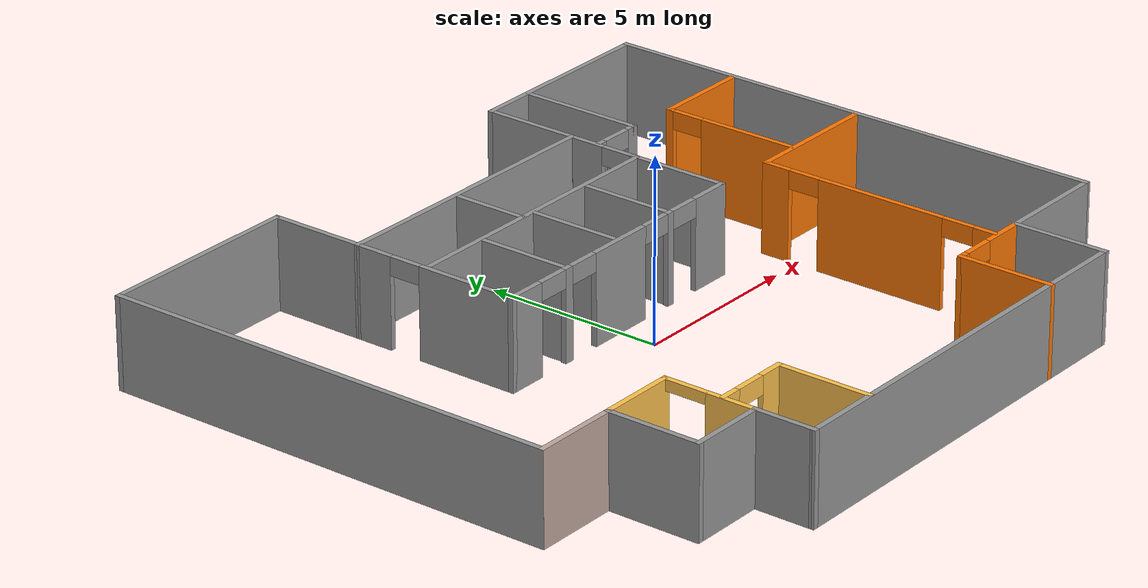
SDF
<?xml version='1.0'?>
<sdf version='1.6'>
  <model name='outerwall'>
    <pose frame=''>0.06164 0.002181 0 0 -0 0</pose>
    <link name='Wall_100'>
      <collision name='Wall_100_Collision'>
        <geometry>
          <box>
            <size>2.55 0.15 2.5</size>
          </box>
        </geometry>
        <pose frame=''>0 0 1.25 0 -0 0</pose>
      </collision>
      <visual name='Wall_100_Visual'>
        <pose frame=''>0 0 1.25 0 -0 0</pose>
        <geometry>
          <box>
            <size>2.55 0.15 2.5</size>
          </box>
        </geometry>
        <material>
          <script>
            <uri>file://media/materials/scripts/gazebo.material</uri>
            <name>Gazebo/Grey</name>
          </script>
          <ambient>1 1 1 1</ambient>
        </material>
        <meta>
          <layer>0</layer>
        </meta>
      </visual>
      <pose frame=''>-0.056011 2.45871 0 0 0 -1.5708</pose>
    </link>
    <link name='Wall_102'>
      <collision name='Wall_102_Collision'>
        <geometry>
          <box>
            <size>2.2 0.15 2.5</size>
          </box>
        </geometry>
        <pose frame=''>0 0 1.25 0 -0 0</pose>
      </collision>
      <visual name='Wall_102_Visual'>
        <pose frame=''>0 0 1.25 0 -0 0</pose>
        <geometry>
          <box>
            <size>2.2 0.15 2.5</size>
          </box>
        </geometry>
        <material>
          <script>
            <uri>file://media/materials/scripts/gazebo.material</uri>
            <name>Gazebo/Grey</name>
          </script>
          <ambient>1 1 1 1</ambient>
        </material>
        <meta>
          <layer>0</layer>
        </meta>
      </visual>
      <pose frame=''>-0.453684 4.80607 0 0 -0 1.5708</pose>
    </link>
    <link name='Wall_105'>
      <collision name='Wall_105_Collision'>
        <geometry>
          <box>
            <size>3.5 0.15 2.5</size>
          </box>
        </geometry>
        <pose frame=''>0 0 1.25 0 -0 0</pose>
      </collision>
      <visual name='Wall_105_Visual'>
        <pose frame=''>0 0 1.25 0 -0 0</pose>
        <geometry>
          <box>
            <size>3.5 0.15 2.5</size>
          </box>
        </geometry>
        <material>
          <script>
            <uri>file://media/materials/scripts/gazebo.material</uri>
            <name>Gazebo/Grey</name>
          </script>
          <ambient>1 1 1 1</ambient>
        </material>
        <meta>
          <layer>0</layer>
        </meta>
      </visual>
      <pose frame=''>5.56389 6.69027 0 0 0 -1.5708</pose>
    </link>
    <link name='Wall_109'>
      <pose frame=''>4.88889 5.01527 0 0 -0 3.14159</pose>
      <visual name='Wall_109_Visual_0'>
        <pose frame=''>-0.57786 0 1.25 0 -0 0</pose>
        <geometry>
          <box>
            <size>0.344281 0.15 2.5</size>
          </box>
        </geometry>
        <material>
          <script>
            <uri>file://media/materials/scripts/gazebo.material</uri>
            <name>Gazebo/Grey</name>
          </script>
          <ambient>1 1 1 1</ambient>
        </material>
        <meta>
          <layer>0</layer>
        </meta>
      </visual>
      <collision name='Wall_109_Collision_0'>
        <geometry>
          <box>
            <size>0.344281 0.15 2.5</size>
          </box>
        </geometry>
        <pose frame=''>-0.57786 0 1.25 0 -0 0</pose>
      </collision>
      <visual name='Wall_109_Visual_1'>
        <pose frame=''>0.62214 0 1.25 0 -0 0</pose>
        <geometry>
          <box>
            <size>0.255719 0.15 2.5</size>
          </box>
        </geometry>
        <material>
          <script>
            <uri>file://media/materials/scripts/gazebo.material</uri>
            <name>Gazebo/Grey</name>
          </script>
          <ambient>1 1 1 1</ambient>
        </material>
        <meta>
          <layer>0</layer>
        </meta>
      </visual>
      <collision name='Wall_109_Collision_1'>
        <geometry>
          <box>
            <size>0.255719 0.15 2.5</size>
          </box>
        </geometry>
        <pose frame=''>0.62214 0 1.25 0 -0 0</pose>
      </collision>
      <visual name='Wall_109_Visual_2'>
        <pose frame=''>0.044281 0 2.25 0 -0 0</pose>
        <geometry>
          <box>
            <size>0.9 0.15 0.5</size>
          </box>
        </geometry>
        <material>
          <script>
            <uri>file://media/materials/scripts/gazebo.material</uri>
            <name>Gazebo/Grey</name>
          </script>
          <ambient>1 1 1 1</ambient>
        </material>
        <meta>
          <layer>0</layer>
        </meta>
      </visual>
      <collision name='Wall_109_Collision_2'>
        <geometry>
          <box>
            <size>0.9 0.15 0.5</size>
          </box>
        </geometry>
        <pose frame=''>0.044281 0 2.25 0 -0 0</pose>
      </collision>
    </link>
    <link name='Wall_11'>
      <collision name='Wall_11_Collision'>
        <geometry>
          <box>
            <size>12 0.15 2.5</size>
          </box>
        </geometry>
        <pose frame=''>0 0 1.25 0 -0 0</pose>
      </collision>
      <visual name='Wall_11_Visual'>
        <pose frame=''>0 0 1.25 0 -0 0</pose>
        <geometry>
          <box>
            <size>12 0.15 2.5</size>
          </box>
        </geometry>
        <material>
          <script>
            <uri>file://media/materials/scripts/gazebo.material</uri>
            <name>Gazebo/Grey</name>
          </script>
          <ambient>1 1 1 1</ambient>
        </material>
        <meta>
          <layer>0</layer>
        </meta>
      </visual>
      <pose frame=''>0.674876 -8.47482 0 0 -0 0</pose>
    </link>
    <link name='Wall_111'>
      <pose frame=''>6.98236 2.98582 0 0 -0 1.5708</pose>
      <visual name='Wall_111_Visual_0'>
        <pose frame=''>-0.560705 0 1.25 0 -0 0</pose>
        <geometry>
          <box>
            <size>2.87859 0.15 2.5</size>
          </box>
        </geometry>
        <material>
          <script>
            <uri>file://media/materials/scripts/gazebo.material</uri>
            <name>Gazebo/Grey</name>
          </script>
          <ambient>0.996078 0.47451 0.0196078 1</ambient>
        </material>
        <meta>
          <layer>0</layer>
        </meta>
      </visual>
      <collision name='Wall_111_Collision_0'>
        <geometry>
          <box>
            <size>2.87859 0.15 2.5</size>
          </box>
        </geometry>
        <pose frame=''>-0.560705 0 1.25 0 -0 0</pose>
      </collision>
      <visual name='Wall_111_Visual_1'>
        <pose frame=''>1.88929 0 1.25 0 -0 0</pose>
        <geometry>
          <box>
            <size>0.22141 0.15 2.5</size>
          </box>
        </geometry>
        <material>
          <script>
            <uri>file://media/materials/scripts/gazebo.material</uri>
            <name>Gazebo/Grey</name>
          </script>
          <ambient>0.996078 0.47451 0.0196078 1</ambient>
        </material>
        <meta>
          <layer>0</layer>
        </meta>
      </visual>
      <collision name='Wall_111_Collision_1'>
        <geometry>
          <box>
            <size>0.22141 0.15 2.5</size>
          </box>
        </geometry>
        <pose frame=''>1.88929 0 1.25 0 -0 0</pose>
      </collision>
      <visual name='Wall_111_Visual_2'>
        <pose frame=''>1.32859 0 2.25 0 -0 0</pose>
        <geometry>
          <box>
            <size>0.9 0.15 0.5</size>
          </box>
        </geometry>
        <material>
          <script>
            <uri>file://media/materials/scripts/gazebo.material</uri>
            <name>Gazebo/Grey</name>
          </script>
          <ambient>0.996078 0.47451 0.0196078 1</ambient>
        </material>
        <meta>
          <layer>0</layer>
        </meta>
      </visual>
      <collision name='Wall_111_Collision_2'>
        <geometry>
          <box>
            <size>0.9 0.15 0.5</size>
          </box>
        </geometry>
        <pose frame=''>1.32859 0 2.25 0 -0 0</pose>
      </collision>
    </link>
    <link name='Wall_113'>
      <collision name='Wall_113_Collision'>
        <geometry>
          <box>
            <size>2.75 0.15 2.5</size>
          </box>
        </geometry>
        <pose frame=''>0 0 1.25 0 -0 0</pose>
      </collision>
      <visual name='Wall_113_Visual'>
        <pose frame=''>0 0 1.25 0 -0 0</pose>
        <geometry>
          <box>
            <size>2.75 0.15 2.5</size>
          </box>
        </geometry>
        <material>
          <script>
            <uri>file://media/materials/scripts/gazebo.material</uri>
            <name>Gazebo/Grey</name>
          </script>
          <ambient>0.996078 0.47451 0.0196078 1</ambient>
        </material>
        <meta>
          <layer>0</layer>
        </meta>
      </visual>
      <pose frame=''>8.28236 4.91082 0 0 -0 0</pose>
    </link>
    <link name='Wall_13'>
      <collision name='Wall_13_Collision'>
        <geometry>
          <box>
            <size>2.7 0.15 2.5</size>
          </box>
        </geometry>
        <pose frame=''>0 0 1.25 0 -0 0</pose>
      </collision>
      <visual name='Wall_13_Visual'>
        <pose frame=''>0 0 1.25 0 -0 0</pose>
        <geometry>
          <box>
            <size>2.7 0.15 2.5</size>
          </box>
        </geometry>
        <material>
          <script>
            <uri>file://media/materials/scripts/gazebo.material</uri>
            <name>Gazebo/Grey</name>
          </script>
          <ambient>1 1 1 1</ambient>
        </material>
        <meta>
          <layer>0</layer>
        </meta>
      </visual>
      <pose frame=''>6.60012 -7.2 0 0 -0 1.57061</pose>
    </link>
    <link name='Wall_15'>
      <collision name='Wall_15_Collision'>
        <geometry>
          <box>
            <size>3.25 0.15 2.5</size>
          </box>
        </geometry>
        <pose frame=''>0 0 1.25 0 -0 0</pose>
      </collision>
      <visual name='Wall_15_Visual'>
        <pose frame=''>0 0 1.25 0 -0 0</pose>
        <geometry>
          <box>
            <size>3.25 0.15 2.5</size>
          </box>
        </geometry>
        <material>
          <script>
            <uri>file://media/materials/scripts/gazebo.material</uri>
            <name>Gazebo/Grey</name>
          </script>
          <ambient>1 1 1 1</ambient>
        </material>
        <meta>
          <layer>0</layer>
        </meta>
      </visual>
      <pose frame=''>8.15012 -5.925 0 0 -0 0.000116</pose>
    </link>
    <link name='Wall_17'>
      <collision name='Wall_17_Collision'>
        <geometry>
          <box>
            <size>14.5 0.15 2.5</size>
          </box>
        </geometry>
        <pose frame=''>0 0 1.25 0 -0 0</pose>
      </collision>
      <visual name='Wall_17_Visual'>
        <pose frame=''>0 0 1.25 0 -0 0</pose>
        <geometry>
          <box>
            <size>14.5 0.15 2.5</size>
          </box>
        </geometry>
        <material>
          <script>
            <uri>file://media/materials/scripts/gazebo.material</uri>
            <name>Gazebo/Grey</name>
          </script>
          <ambient>1 1 1 1</ambient>
        </material>
        <meta>
          <layer>0</layer>
        </meta>
      </visual>
      <pose frame=''>9.69988 1.25018 0 0 -0 1.5708</pose>
    </link>
    <link name='Wall_19'>
      <collision name='Wall_19_Collision'>
        <geometry>
          <box>
            <size>5.75 0.15 2.5</size>
          </box>
        </geometry>
        <pose frame=''>0 0 1.25 0 -0 0</pose>
      </collision>
      <visual name='Wall_19_Visual'>
        <pose frame=''>0 0 1.25 0 -0 0</pose>
        <geometry>
          <box>
            <size>5.75 0.15 2.5</size>
          </box>
        </geometry>
        <material>
          <script>
            <uri>file://media/materials/scripts/gazebo.material</uri>
            <name>Gazebo/Grey</name>
          </script>
          <ambient>1 1 1 1</ambient>
        </material>
        <meta>
          <layer>0</layer>
        </meta>
      </visual>
      <pose frame=''>6.89988 8.42518 0 0 -0 3.14159</pose>
    </link>
    <link name='Wall_21'>
      <collision name='Wall_21_Collision'>
        <geometry>
          <box>
            <size>1.8 0.15 2.5</size>
          </box>
        </geometry>
        <pose frame=''>0 0 1.25 0 -0 0</pose>
      </collision>
      <visual name='Wall_21_Visual'>
        <pose frame=''>0 0 1.25 0 -0 0</pose>
        <geometry>
          <box>
            <size>1.8 0.15 2.5</size>
          </box>
        </geometry>
        <material>
          <script>
            <uri>file://media/materials/scripts/gazebo.material</uri>
            <name>Gazebo/Grey</name>
          </script>
          <ambient>1 1 1 1</ambient>
        </material>
        <meta>
          <layer>0</layer>
        </meta>
      </visual>
      <pose frame=''>-5.24988 -7.65 0 0 -0 1.5705</pose>
    </link>
    <link name='Wall_23'>
      <collision name='Wall_23_Collision'>
        <geometry>
          <box>
            <size>2.25 0.15 2.5</size>
          </box>
        </geometry>
        <pose frame=''>0 0 1.25 0 -0 0</pose>
      </collision>
      <visual name='Wall_23_Visual'>
        <pose frame=''>0 0 1.25 0 -0 0</pose>
        <geometry>
          <box>
            <size>2.25 0.15 2.5</size>
          </box>
        </geometry>
        <material>
          <script>
            <uri>file://media/materials/scripts/gazebo.material</uri>
            <name>Gazebo/Grey</name>
          </script>
          <ambient>1 1 1 1</ambient>
        </material>
        <meta>
          <layer>0</layer>
        </meta>
      </visual>
      <pose frame=''>-6.29988 -6.825 0 0 -0 3.14142</pose>
    </link>
    <link name='Wall_25'>
      <collision name='Wall_25_Collision'>
        <geometry>
          <box>
            <size>2.7 0.15 2.5</size>
          </box>
        </geometry>
        <pose frame=''>0 0 1.25 0 -0 0</pose>
      </collision>
      <visual name='Wall_25_Visual'>
        <pose frame=''>0 0 1.25 0 -0 0</pose>
        <geometry>
          <box>
            <size>2.7 0.15 2.5</size>
          </box>
        </geometry>
        <material>
          <script>
            <uri>file://media/materials/scripts/gazebo.material</uri>
            <name>Gazebo/Grey</name>
          </script>
          <ambient>1 1 1 1</ambient>
        </material>
        <meta>
          <layer>0</layer>
        </meta>
      </visual>
      <pose frame=''>-7.34988 -5.55 0 0 -0 1.57061</pose>
    </link>
    <link name='Wall_27'>
      <collision name='Wall_27_Collision'>
        <geometry>
          <box>
            <size>2.5 0.15 2.5</size>
          </box>
        </geometry>
        <pose frame=''>0 0 1.25 0 -0 0</pose>
      </collision>
      <visual name='Wall_27_Visual'>
        <pose frame=''>0 0 1.25 0 -0 0</pose>
        <geometry>
          <box>
            <size>2.5 0.15 2.5</size>
          </box>
        </geometry>
        <material>
          <script>
            <uri>file://media/materials/scripts/gazebo.material</uri>
            <name>Gazebo/Grey</name>
          </script>
          <ambient>0.760784 0.662745 0.627451 1</ambient>
        </material>
        <meta>
          <layer>0</layer>
        </meta>
      </visual>
      <pose frame=''>-8.52464 -4.27518 0 0 -0 3.14159</pose>
    </link>
    <link name='Wall_29'>
      <collision name='Wall_29_Collision'>
        <geometry>
          <box>
            <size>12.9 0.15 2.5</size>
          </box>
        </geometry>
        <pose frame=''>0 0 1.25 0 -0 0</pose>
      </collision>
      <visual name='Wall_29_Visual'>
        <pose frame=''>0 0 1.25 0 -0 0</pose>
        <geometry>
          <box>
            <size>12.9 0.15 2.5</size>
          </box>
        </geometry>
        <material>
          <script>
            <uri>file://media/materials/scripts/gazebo.material</uri>
            <name>Gazebo/Grey</name>
          </script>
          <ambient>1 1 1 1</ambient>
        </material>
        <meta>
          <layer>0</layer>
        </meta>
      </visual>
      <pose frame=''>-9.69988 2.1 0 0 -0 1.57083</pose>
    </link>
    <link name='Wall_33'>
      <collision name='Wall_33_Collision'>
        <geometry>
          <box>
            <size>5.75 0.15 2.5</size>
          </box>
        </geometry>
        <pose frame=''>0 0 1.25 0 -0 0</pose>
      </collision>
      <visual name='Wall_33_Visual'>
        <pose frame=''>0 0 1.25 0 -0 0</pose>
        <geometry>
          <box>
            <size>5.75 0.15 2.5</size>
          </box>
        </geometry>
        <material>
          <script>
            <uri>file://media/materials/scripts/gazebo.material</uri>
            <name>Gazebo/Grey</name>
          </script>
          <ambient>1 1 1 1</ambient>
        </material>
        <meta>
          <layer>0</layer>
        </meta>
      </visual>
      <pose frame=''>-6.90012 8.47518 0 0 -0 0</pose>
    </link>
    <link name='Wall_35'>
      <collision name='Wall_35_Collision'>
        <geometry>
          <box>
            <size>2.75 0.15 2.5</size>
          </box>
        </geometry>
        <pose frame=''>0 0 1.25 0 -0 0</pose>
      </collision>
      <visual name='Wall_35_Visual'>
        <pose frame=''>0 0 1.25 0 -0 0</pose>
        <geometry>
          <box>
            <size>2.75 0.15 2.5</size>
          </box>
        </geometry>
        <material>
          <script>
            <uri>file://media/materials/scripts/gazebo.material</uri>
            <name>Gazebo/Grey</name>
          </script>
          <ambient>1 1 1 1</ambient>
        </material>
        <meta>
          <layer>0</layer>
        </meta>
      </visual>
      <pose frame=''>-4.10012 7.17518 0 0 0 -1.5708</pose>
    </link>
    <link name='Wall_37'>
      <collision name='Wall_37_Collision'>
        <geometry>
          <box>
            <size>2.75 0.15 2.5</size>
          </box>
        </geometry>
        <pose frame=''>0 0 1.25 0 -0 0</pose>
      </collision>
      <visual name='Wall_37_Visual'>
        <pose frame=''>0 0 1.25 0 -0 0</pose>
        <geometry>
          <box>
            <size>2.75 0.15 2.5</size>
          </box>
        </geometry>
        <material>
          <script>
            <uri>file://media/materials/scripts/gazebo.material</uri>
            <name>Gazebo/Grey</name>
          </script>
          <ambient>1 1 1 1</ambient>
        </material>
        <meta>
          <layer>0</layer>
        </meta>
      </visual>
      <pose frame=''>4.09988 7.12518 0 0 0 -1.5708</pose>
    </link>
    <link name='Wall_39'>
      <collision name='Wall_39_Collision'>
        <geometry>
          <box>
            <size>8.35015 0.15 2.5</size>
          </box>
        </geometry>
        <pose frame=''>0 0 1.25 0 -0 0</pose>
      </collision>
      <visual name='Wall_39_Visual'>
        <pose frame=''>0 0 1.25 0 -0 0</pose>
        <geometry>
          <box>
            <size>8.35015 0.15 2.5</size>
          </box>
        </geometry>
        <material>
          <script>
            <uri>file://media/materials/scripts/gazebo.material</uri>
            <name>Gazebo/Grey</name>
          </script>
          <ambient>1 1 1 1</ambient>
        </material>
        <meta>
          <layer>0</layer>
        </meta>
      </visual>
      <pose frame=''>-0.000124 5.85018 0 0 0 -0.006097</pose>
    </link>
    <link name='Wall_41'>
      <collision name='Wall_41_Collision'>
        <geometry>
          <box>
            <size>2.25 0.15 2.5</size>
          </box>
        </geometry>
        <pose frame=''>0 0 1.25 0 -0 0</pose>
      </collision>
      <visual name='Wall_41_Visual'>
        <pose frame=''>0 0 1.25 0 -0 0</pose>
        <geometry>
          <box>
            <size>2.25 0.15 2.5</size>
          </box>
        </geometry>
        <material>
          <script>
            <uri>file://media/materials/scripts/gazebo.material</uri>
            <name>Gazebo/Grey</name>
          </script>
          <ambient>1 0.764706 0.305882 1</ambient>
        </material>
        <meta>
          <layer>0</layer>
        </meta>
      </visual>
      <pose frame=''>-6.29964 -4.27518 0 0 -0 0</pose>
    </link>
    <link name='Wall_43'>
      <pose frame=''>-5.24964 -5.55018 0 0 0 -1.5708</pose>
      <visual name='Wall_43_Visual_0'>
        <pose frame=''>-1.30955 0 1.25 0 -0 0</pose>
        <geometry>
          <box>
            <size>0.080907 0.15 2.5</size>
          </box>
        </geometry>
        <material>
          <script>
            <uri>file://media/materials/scripts/gazebo.material</uri>
            <name>Gazebo/Grey</name>
          </script>
          <ambient>1 0.764706 0.305882 1</ambient>
        </material>
        <meta>
          <layer>0</layer>
        </meta>
      </visual>
      <collision name='Wall_43_Collision_0'>
        <geometry>
          <box>
            <size>0.080907 0.15 2.5</size>
          </box>
        </geometry>
        <pose frame=''>-1.30955 0 1.25 0 -0 0</pose>
      </collision>
      <visual name='Wall_43_Visual_1'>
        <pose frame=''>0.640454 0 1.25 0 -0 0</pose>
        <geometry>
          <box>
            <size>1.41909 0.15 2.5</size>
          </box>
        </geometry>
        <material>
          <script>
            <uri>file://media/materials/scripts/gazebo.material</uri>
            <name>Gazebo/Grey</name>
          </script>
          <ambient>1 0.764706 0.305882 1</ambient>
        </material>
        <meta>
          <layer>0</layer>
        </meta>
      </visual>
      <collision name='Wall_43_Collision_1'>
        <geometry>
          <box>
            <size>1.41909 0.15 2.5</size>
          </box>
        </geometry>
        <pose frame=''>0.640454 0 1.25 0 -0 0</pose>
      </collision>
      <visual name='Wall_43_Visual_2'>
        <pose frame=''>-0.669093 0 0 0 -0 0</pose>
        <geometry>
          <box>
            <size>1.2 0.15 0.3</size>
          </box>
        </geometry>
        <material>
          <script>
            <uri>file://media/materials/scripts/gazebo.material</uri>
            <name>Gazebo/Grey</name>
          </script>
          <ambient>1 0.764706 0.305882 1</ambient>
        </material>
        <meta>
          <layer>0</layer>
        </meta>
      </visual>
      <collision name='Wall_43_Collision_2'>
        <geometry>
          <box>
            <size>1.2 0.15 0.3</size>
          </box>
        </geometry>
        <pose frame=''>-0.669093 0 0 0 -0 0</pose>
      </collision>
      <visual name='Wall_43_Visual_3'>
        <pose frame=''>-0.669093 0 2.35 0 -0 0</pose>
        <geometry>
          <box>
            <size>1.2 0.15 0.3</size>
          </box>
        </geometry>
        <material>
          <script>
            <uri>file://media/materials/scripts/gazebo.material</uri>
            <name>Gazebo/Grey</name>
          </script>
          <ambient>1 0.764706 0.305882 1</ambient>
        </material>
        <meta>
          <layer>0</layer>
        </meta>
      </visual>
      <collision name='Wall_43_Collision_3'>
        <geometry>
          <box>
            <size>1.2 0.15 0.3</size>
          </box>
        </geometry>
        <pose frame=''>-0.669093 0 2.35 0 -0 0</pose>
      </collision>
    </link>
    <link name='Wall_51'>
      <pose frame=''>-4.16164 -5.90818 0 0 -0 0</pose>
      <visual name='Wall_51_Visual_0'>
        <pose frame=''>-0.832636 0 1.25 0 -0 0</pose>
        <geometry>
          <box>
            <size>0.584727 0.15 2.5</size>
          </box>
        </geometry>
        <material>
          <script>
            <uri>file://media/materials/scripts/gazebo.material</uri>
            <name>Gazebo/Grey</name>
          </script>
          <ambient>1 0.764706 0.305882 1</ambient>
        </material>
        <meta>
          <layer>0</layer>
        </meta>
      </visual>
      <collision name='Wall_51_Collision_0'>
        <geometry>
          <box>
            <size>0.584727 0.15 2.5</size>
          </box>
        </geometry>
        <pose frame=''>-0.832636 0 1.25 0 -0 0</pose>
      </collision>
      <visual name='Wall_51_Visual_1'>
        <pose frame=''>0.742364 0 1.25 0 -0 0</pose>
        <geometry>
          <box>
            <size>0.765273 0.15 2.5</size>
          </box>
        </geometry>
        <material>
          <script>
            <uri>file://media/materials/scripts/gazebo.material</uri>
            <name>Gazebo/Grey</name>
          </script>
          <ambient>1 0.764706 0.305882 1</ambient>
        </material>
        <meta>
          <layer>0</layer>
        </meta>
      </visual>
      <collision name='Wall_51_Collision_1'>
        <geometry>
          <box>
            <size>0.765273 0.15 2.5</size>
          </box>
        </geometry>
        <pose frame=''>0.742364 0 1.25 0 -0 0</pose>
      </collision>
      <visual name='Wall_51_Visual_2'>
        <pose frame=''>-0.090273 0 2.25 0 -0 0</pose>
        <geometry>
          <box>
            <size>0.9 0.15 0.5</size>
          </box>
        </geometry>
        <material>
          <script>
            <uri>file://media/materials/scripts/gazebo.material</uri>
            <name>Gazebo/Grey</name>
          </script>
          <ambient>1 0.764706 0.305882 1</ambient>
        </material>
        <meta>
          <layer>0</layer>
        </meta>
      </visual>
      <collision name='Wall_51_Collision_2'>
        <geometry>
          <box>
            <size>0.9 0.15 0.5</size>
          </box>
        </geometry>
        <pose frame=''>-0.090273 0 2.25 0 -0 0</pose>
      </collision>
    </link>
    <link name='Wall_53'>
      <collision name='Wall_53_Collision'>
        <geometry>
          <box>
            <size>2.7 0.15 2.5</size>
          </box>
        </geometry>
        <pose frame=''>0 0 1.25 0 -0 0</pose>
      </collision>
      <visual name='Wall_53_Visual'>
        <pose frame=''>0 0 1.25 0 -0 0</pose>
        <geometry>
          <box>
            <size>2.7 0.15 2.5</size>
          </box>
        </geometry>
        <material>
          <script>
            <uri>file://media/materials/scripts/gazebo.material</uri>
            <name>Gazebo/Grey</name>
          </script>
          <ambient>1 0.764706 0.305882 1</ambient>
        </material>
        <meta>
          <layer>0</layer>
        </meta>
      </visual>
      <pose frame=''>-3.11164 -7.18318 0 0 0 -1.5708</pose>
    </link>
    <link name='Wall_55'>
      <pose frame=''>5.42536 -5.92518 0 0 -0 3.14159</pose>
      <visual name='Wall_55_Visual_0'>
        <pose frame=''>-0.603559 0 1.25 0 -0 0</pose>
        <geometry>
          <box>
            <size>1.29288 0.15 2.5</size>
          </box>
        </geometry>
        <material>
          <script>
            <uri>file://media/materials/scripts/gazebo.material</uri>
            <name>Gazebo/Grey</name>
          </script>
          <ambient>0.996078 0.47451 0.0196078 1</ambient>
        </material>
        <meta>
          <layer>0</layer>
        </meta>
      </visual>
      <collision name='Wall_55_Collision_0'>
        <geometry>
          <box>
            <size>1.29288 0.15 2.5</size>
          </box>
        </geometry>
        <pose frame=''>-0.603559 0 1.25 0 -0 0</pose>
      </collision>
      <visual name='Wall_55_Visual_1'>
        <pose frame=''>1.09644 0 1.25 0 -0 0</pose>
        <geometry>
          <box>
            <size>0.307118 0.15 2.5</size>
          </box>
        </geometry>
        <material>
          <script>
            <uri>file://media/materials/scripts/gazebo.material</uri>
            <name>Gazebo/Grey</name>
          </script>
          <ambient>0.996078 0.47451 0.0196078 1</ambient>
        </material>
        <meta>
          <layer>0</layer>
        </meta>
      </visual>
      <collision name='Wall_55_Collision_1'>
        <geometry>
          <box>
            <size>0.307118 0.15 2.5</size>
          </box>
        </geometry>
        <pose frame=''>1.09644 0 1.25 0 -0 0</pose>
      </collision>
      <visual name='Wall_55_Visual_2'>
        <pose frame=''>0.492882 0 2.25 0 -0 0</pose>
        <geometry>
          <box>
            <size>0.9 0.15 0.5</size>
          </box>
        </geometry>
        <material>
          <script>
            <uri>file://media/materials/scripts/gazebo.material</uri>
            <name>Gazebo/Grey</name>
          </script>
          <ambient>0.996078 0.47451 0.0196078 1</ambient>
        </material>
        <meta>
          <layer>0</layer>
        </meta>
      </visual>
      <collision name='Wall_55_Collision_2'>
        <geometry>
          <box>
            <size>0.9 0.15 0.5</size>
          </box>
        </geometry>
        <pose frame=''>0.492882 0 2.25 0 -0 0</pose>
      </collision>
    </link>
    <link name='Wall_56'>
      <collision name='Wall_56_Collision'>
        <geometry>
          <box>
            <size>2.7 0.15 2.5</size>
          </box>
        </geometry>
        <pose frame=''>0 0 1.25 0 -0 0</pose>
      </collision>
      <visual name='Wall_56_Visual'>
        <pose frame=''>0 0 1.25 0 -0 0</pose>
        <geometry>
          <box>
            <size>2.7 0.15 2.5</size>
          </box>
        </geometry>
        <material>
          <script>
            <uri>file://media/materials/scripts/gazebo.material</uri>
            <name>Gazebo/Grey</name>
          </script>
          <ambient>0.996078 0.47451 0.0196078 1</ambient>
        </material>
        <meta>
          <layer>0</layer>
        </meta>
      </visual>
      <pose frame=''>4.25036 -7.20018 0 0 0 -1.5708</pose>
    </link>
    <link name='Wall_60'>
      <pose frame=''>5.82536 -2.42218 0 0 -0 1.5708</pose>
      <visual name='Wall_60_Visual_0'>
        <pose frame=''>-3.15632 0 1.25 0 -0 0</pose>
        <geometry>
          <box>
            <size>0.687362 0.15 2.5</size>
          </box>
        </geometry>
        <material>
          <script>
            <uri>file://media/materials/scripts/gazebo.material</uri>
            <name>Gazebo/Grey</name>
          </script>
          <ambient>0.996078 0.47451 0.0196078 1</ambient>
        </material>
        <meta>
          <layer>0</layer>
        </meta>
      </visual>
      <collision name='Wall_60_Collision_0'>
        <geometry>
          <box>
            <size>0.687362 0.15 2.5</size>
          </box>
        </geometry>
        <pose frame=''>-3.15632 0 1.25 0 -0 0</pose>
      </collision>
      <visual name='Wall_60_Visual_1'>
        <pose frame=''>-0.060628 0 1.25 0 -0 0</pose>
        <geometry>
          <box>
            <size>3.70402 0.15 2.5</size>
          </box>
        </geometry>
        <material>
          <script>
            <uri>file://media/materials/scripts/gazebo.material</uri>
            <name>Gazebo/Grey</name>
          </script>
          <ambient>0.996078 0.47451 0.0196078 1</ambient>
        </material>
        <meta>
          <layer>0</layer>
        </meta>
      </visual>
      <collision name='Wall_60_Collision_1'>
        <geometry>
          <box>
            <size>3.70402 0.15 2.5</size>
          </box>
        </geometry>
        <pose frame=''>-0.060628 0 1.25 0 -0 0</pose>
      </collision>
      <visual name='Wall_60_Visual_2'>
        <pose frame=''>3.09569 0 1.25 0 -0 0</pose>
        <geometry>
          <box>
            <size>0.808618 0.15 2.5</size>
          </box>
        </geometry>
        <material>
          <script>
            <uri>file://media/materials/scripts/gazebo.material</uri>
            <name>Gazebo/Grey</name>
          </script>
          <ambient>0.996078 0.47451 0.0196078 1</ambient>
        </material>
        <meta>
          <layer>0</layer>
        </meta>
      </visual>
      <collision name='Wall_60_Collision_2'>
        <geometry>
          <box>
            <size>0.808618 0.15 2.5</size>
          </box>
        </geometry>
        <pose frame=''>3.09569 0 1.25 0 -0 0</pose>
      </collision>
      <visual name='Wall_60_Visual_3'>
        <pose frame=''>-2.36264 0 2.25 0 -0 0</pose>
        <geometry>
          <box>
            <size>0.9 0.15 0.5</size>
          </box>
        </geometry>
        <material>
          <script>
            <uri>file://media/materials/scripts/gazebo.material</uri>
            <name>Gazebo/Grey</name>
          </script>
          <ambient>0.996078 0.47451 0.0196078 1</ambient>
        </material>
        <meta>
          <layer>0</layer>
        </meta>
      </visual>
      <collision name='Wall_60_Collision_3'>
        <geometry>
          <box>
            <size>0.9 0.15 0.5</size>
          </box>
        </geometry>
        <pose frame=''>-2.36264 0 2.25 0 -0 0</pose>
      </collision>
      <visual name='Wall_60_Visual_4'>
        <pose frame=''>2.24138 0 2.25 0 -0 0</pose>
        <geometry>
          <box>
            <size>0.9 0.15 0.5</size>
          </box>
        </geometry>
        <material>
          <script>
            <uri>file://media/materials/scripts/gazebo.material</uri>
            <name>Gazebo/Grey</name>
          </script>
          <ambient>0.996078 0.47451 0.0196078 1</ambient>
        </material>
        <meta>
          <layer>0</layer>
        </meta>
      </visual>
      <collision name='Wall_60_Collision_4'>
        <geometry>
          <box>
            <size>0.9 0.15 0.5</size>
          </box>
        </geometry>
        <pose frame=''>2.24138 0 2.25 0 -0 0</pose>
      </collision>
    </link>
    <link name='Wall_65'>
      <collision name='Wall_65_Collision'>
        <geometry>
          <box>
            <size>4 0.15 2.5</size>
          </box>
        </geometry>
        <pose frame=''>0 0 1.25 0 -0 0</pose>
      </collision>
      <visual name='Wall_65_Visual'>
        <pose frame=''>0 0 1.25 0 -0 0</pose>
        <geometry>
          <box>
            <size>4 0.15 2.5</size>
          </box>
        </geometry>
        <material>
          <script>
            <uri>file://media/materials/scripts/gazebo.material</uri>
            <name>Gazebo/Grey</name>
          </script>
          <ambient>0.996078 0.47451 0.0196078 1</ambient>
        </material>
        <meta>
          <layer>0</layer>
        </meta>
      </visual>
      <pose frame=''>7.75036 1.00282 0 0 -0 0</pose>
    </link>
    <link name='Wall_72'>
      <pose frame=''>4.09988 3.47518 0 0 0 -1.5708</pose>
      <visual name='Wall_72_Visual_0'>
        <pose frame=''>-1.88158 0 1.25 0 -0 0</pose>
        <geometry>
          <box>
            <size>1.08683 0.15 2.5</size>
          </box>
        </geometry>
        <material>
          <script>
            <uri>file://media/materials/scripts/gazebo.material</uri>
            <name>Gazebo/Grey</name>
          </script>
          <ambient>1 1 1 1</ambient>
        </material>
        <meta>
          <layer>0</layer>
        </meta>
      </visual>
      <collision name='Wall_72_Collision_0'>
        <geometry>
          <box>
            <size>1.08683 0.15 2.5</size>
          </box>
        </geometry>
        <pose frame=''>-1.88158 0 1.25 0 -0 0</pose>
      </collision>
      <visual name='Wall_72_Visual_1'>
        <pose frame=''>0.993416 0 1.25 0 -0 0</pose>
        <geometry>
          <box>
            <size>2.86317 0.15 2.5</size>
          </box>
        </geometry>
        <material>
          <script>
            <uri>file://media/materials/scripts/gazebo.material</uri>
            <name>Gazebo/Grey</name>
          </script>
          <ambient>1 1 1 1</ambient>
        </material>
        <meta>
          <layer>0</layer>
        </meta>
      </visual>
      <collision name='Wall_72_Collision_1'>
        <geometry>
          <box>
            <size>2.86317 0.15 2.5</size>
          </box>
        </geometry>
        <pose frame=''>0.993416 0 1.25 0 -0 0</pose>
      </collision>
      <visual name='Wall_72_Visual_2'>
        <pose frame=''>-0.888168 0 2.25 0 -0 0</pose>
        <geometry>
          <box>
            <size>0.9 0.15 0.5</size>
          </box>
        </geometry>
        <material>
          <script>
            <uri>file://media/materials/scripts/gazebo.material</uri>
            <name>Gazebo/Grey</name>
          </script>
          <ambient>1 1 1 1</ambient>
        </material>
        <meta>
          <layer>0</layer>
        </meta>
      </visual>
      <collision name='Wall_72_Collision_2'>
        <geometry>
          <box>
            <size>0.9 0.15 0.5</size>
          </box>
        </geometry>
        <pose frame=''>-0.888168 0 2.25 0 -0 0</pose>
      </collision>
    </link>
    <link name='Wall_74'>
      <pose frame=''>-0.000124 1.12518 0 0 -0 3.14159</pose>
      <visual name='Wall_74_Visual_0'>
        <pose frame=''>-3.57137 0 1.25 0 -0 0</pose>
        <geometry>
          <box>
            <size>1.20725 0.15 2.5</size>
          </box>
        </geometry>
        <material>
          <script>
            <uri>file://media/materials/scripts/gazebo.material</uri>
            <name>Gazebo/Grey</name>
          </script>
          <ambient>1 1 1 1</ambient>
        </material>
        <meta>
          <layer>0</layer>
        </meta>
      </visual>
      <collision name='Wall_74_Collision_0'>
        <geometry>
          <box>
            <size>1.20725 0.15 2.5</size>
          </box>
        </geometry>
        <pose frame=''>-3.57137 0 1.25 0 -0 0</pose>
      </collision>
      <visual name='Wall_74_Visual_1'>
        <pose frame=''>-1.96019 0 1.25 0 -0 0</pose>
        <geometry>
          <box>
            <size>0.215111 0.15 2.5</size>
          </box>
        </geometry>
        <material>
          <script>
            <uri>file://media/materials/scripts/gazebo.material</uri>
            <name>Gazebo/Grey</name>
          </script>
          <ambient>1 1 1 1</ambient>
        </material>
        <meta>
          <layer>0</layer>
        </meta>
      </visual>
      <collision name='Wall_74_Collision_1'>
        <geometry>
          <box>
            <size>0.215111 0.15 2.5</size>
          </box>
        </geometry>
        <pose frame=''>-1.96019 0 1.25 0 -0 0</pose>
      </collision>
      <visual name='Wall_74_Visual_2'>
        <pose frame=''>0.017273 0 1.25 0 -0 0</pose>
        <geometry>
          <box>
            <size>1.93982 0.15 2.5</size>
          </box>
        </geometry>
        <material>
          <script>
            <uri>file://media/materials/scripts/gazebo.material</uri>
            <name>Gazebo/Grey</name>
          </script>
          <ambient>1 1 1 1</ambient>
        </material>
        <meta>
          <layer>0</layer>
        </meta>
      </visual>
      <collision name='Wall_74_Collision_2'>
        <geometry>
          <box>
            <size>1.93982 0.15 2.5</size>
          </box>
        </geometry>
        <pose frame=''>0.017273 0 1.25 0 -0 0</pose>
      </collision>
      <visual name='Wall_74_Visual_3'>
        <pose frame=''>2.02447 0 1.25 0 -0 0</pose>
        <geometry>
          <box>
            <size>0.274583 0.15 2.5</size>
          </box>
        </geometry>
        <material>
          <script>
            <uri>file://media/materials/scripts/gazebo.material</uri>
            <name>Gazebo/Grey</name>
          </script>
          <ambient>1 1 1 1</ambient>
        </material>
        <meta>
          <layer>0</layer>
        </meta>
      </visual>
      <collision name='Wall_74_Collision_3'>
        <geometry>
          <box>
            <size>0.274583 0.15 2.5</size>
          </box>
        </geometry>
        <pose frame=''>2.02447 0 1.25 0 -0 0</pose>
      </collision>
      <visual name='Wall_74_Visual_4'>
        <pose frame=''>3.61838 0 1.25 0 -0 0</pose>
        <geometry>
          <box>
            <size>1.11324 0.15 2.5</size>
          </box>
        </geometry>
        <material>
          <script>
            <uri>file://media/materials/scripts/gazebo.material</uri>
            <name>Gazebo/Grey</name>
          </script>
          <ambient>1 1 1 1</ambient>
        </material>
        <meta>
          <layer>0</layer>
        </meta>
      </visual>
      <collision name='Wall_74_Collision_4'>
        <geometry>
          <box>
            <size>1.11324 0.15 2.5</size>
          </box>
        </geometry>
        <pose frame=''>3.61838 0 1.25 0 -0 0</pose>
      </collision>
      <visual name='Wall_74_Visual_5'>
        <pose frame=''>-2.51775 0 2.25 0 -0 0</pose>
        <geometry>
          <box>
            <size>0.9 0.15 0.5</size>
          </box>
        </geometry>
        <material>
          <script>
            <uri>file://media/materials/scripts/gazebo.material</uri>
            <name>Gazebo/Grey</name>
          </script>
          <ambient>1 1 1 1</ambient>
        </material>
        <meta>
          <layer>0</layer>
        </meta>
      </visual>
      <collision name='Wall_74_Collision_5'>
        <geometry>
          <box>
            <size>0.9 0.15 0.5</size>
          </box>
        </geometry>
        <pose frame=''>-2.51775 0 2.25 0 -0 0</pose>
      </collision>
      <visual name='Wall_74_Visual_6'>
        <pose frame=''>-1.40264 0 2.25 0 -0 0</pose>
        <geometry>
          <box>
            <size>0.9 0.15 0.5</size>
          </box>
        </geometry>
        <material>
          <script>
            <uri>file://media/materials/scripts/gazebo.material</uri>
            <name>Gazebo/Grey</name>
          </script>
          <ambient>1 1 1 1</ambient>
        </material>
        <meta>
          <layer>0</layer>
        </meta>
      </visual>
      <collision name='Wall_74_Collision_6'>
        <geometry>
          <box>
            <size>0.9 0.15 0.5</size>
          </box>
        </geometry>
        <pose frame=''>-1.40264 0 2.25 0 -0 0</pose>
      </collision>
      <visual name='Wall_74_Visual_7'>
        <pose frame=''>1.43718 0 2.25 0 -0 0</pose>
        <geometry>
          <box>
            <size>0.9 0.15 0.5</size>
          </box>
        </geometry>
        <material>
          <script>
            <uri>file://media/materials/scripts/gazebo.material</uri>
            <name>Gazebo/Grey</name>
          </script>
          <ambient>1 1 1 1</ambient>
        </material>
        <meta>
          <layer>0</layer>
        </meta>
      </visual>
      <collision name='Wall_74_Collision_7'>
        <geometry>
          <box>
            <size>0.9 0.15 0.5</size>
          </box>
        </geometry>
        <pose frame=''>1.43718 0 2.25 0 -0 0</pose>
      </collision>
      <visual name='Wall_74_Visual_8'>
        <pose frame=''>2.61176 0 2.25 0 -0 0</pose>
        <geometry>
          <box>
            <size>0.9 0.15 0.5</size>
          </box>
        </geometry>
        <material>
          <script>
            <uri>file://media/materials/scripts/gazebo.material</uri>
            <name>Gazebo/Grey</name>
          </script>
          <ambient>1 1 1 1</ambient>
        </material>
        <meta>
          <layer>0</layer>
        </meta>
      </visual>
      <collision name='Wall_74_Collision_8'>
        <geometry>
          <box>
            <size>0.9 0.15 0.5</size>
          </box>
        </geometry>
        <pose frame=''>2.61176 0 2.25 0 -0 0</pose>
      </collision>
    </link>
    <link name='Wall_77'>
      <pose frame=''>-4.10012 3.50018 0 0 -0 1.5708</pose>
      <visual name='Wall_77_Visual_0'>
        <pose frame=''>-1.01148 0 1.25 0 -0 0</pose>
        <geometry>
          <box>
            <size>2.87703 0.15 2.5</size>
          </box>
        </geometry>
        <material>
          <script>
            <uri>file://media/materials/scripts/gazebo.material</uri>
            <name>Gazebo/Grey</name>
          </script>
          <ambient>1 1 1 1</ambient>
        </material>
        <meta>
          <layer>0</layer>
        </meta>
      </visual>
      <collision name='Wall_77_Collision_0'>
        <geometry>
          <box>
            <size>2.87703 0.15 2.5</size>
          </box>
        </geometry>
        <pose frame=''>-1.01148 0 1.25 0 -0 0</pose>
      </collision>
      <visual name='Wall_77_Visual_1'>
        <pose frame=''>1.88851 0 1.25 0 -0 0</pose>
        <geometry>
          <box>
            <size>1.12297 0.15 2.5</size>
          </box>
        </geometry>
        <material>
          <script>
            <uri>file://media/materials/scripts/gazebo.material</uri>
            <name>Gazebo/Grey</name>
          </script>
          <ambient>1 1 1 1</ambient>
        </material>
        <meta>
          <layer>0</layer>
        </meta>
      </visual>
      <collision name='Wall_77_Collision_1'>
        <geometry>
          <box>
            <size>1.12297 0.15 2.5</size>
          </box>
        </geometry>
        <pose frame=''>1.88851 0 1.25 0 -0 0</pose>
      </collision>
      <visual name='Wall_77_Visual_2'>
        <pose frame=''>0.877029 0 2.25 0 -0 0</pose>
        <geometry>
          <box>
            <size>0.9 0.15 0.5</size>
          </box>
        </geometry>
        <material>
          <script>
            <uri>file://media/materials/scripts/gazebo.material</uri>
            <name>Gazebo/Grey</name>
          </script>
          <ambient>1 1 1 1</ambient>
        </material>
        <meta>
          <layer>0</layer>
        </meta>
      </visual>
      <collision name='Wall_77_Collision_2'>
        <geometry>
          <box>
            <size>0.9 0.15 0.5</size>
          </box>
        </geometry>
        <pose frame=''>0.877029 0 2.25 0 -0 0</pose>
      </collision>
    </link>
    <link name='Wall_89'>
      <collision name='Wall_89_Collision'>
        <geometry>
          <box>
            <size>8.25 0.15 2.5</size>
          </box>
        </geometry>
        <pose frame=''>0 0 1.25 0 -0 0</pose>
      </collision>
      <visual name='Wall_89_Visual'>
        <pose frame=''>0 0 1.25 0 -0 0</pose>
        <geometry>
          <box>
            <size>8.25 0.15 2.5</size>
          </box>
        </geometry>
        <material>
          <script>
            <uri>file://media/materials/scripts/gazebo.material</uri>
            <name>Gazebo/Grey</name>
          </script>
          <ambient>1 1 1 1</ambient>
        </material>
        <meta>
          <layer>0</layer>
        </meta>
      </visual>
      <pose frame=''>0.017259 3.75048 0 0 -0 0</pose>
    </link>
    <link name='Wall_96'>
      <collision name='Wall_96_Collision'>
        <geometry>
          <box>
            <size>2.5 0.15 2.5</size>
          </box>
        </geometry>
        <pose frame=''>0 0 1.25 0 -0 0</pose>
      </collision>
      <visual name='Wall_96_Visual'>
        <pose frame=''>0 0 1.25 0 -0 0</pose>
        <geometry>
          <box>
            <size>2.5 0.15 2.5</size>
          </box>
        </geometry>
        <material>
          <script>
            <uri>file://media/materials/scripts/gazebo.material</uri>
            <name>Gazebo/Grey</name>
          </script>
          <ambient>1 1 1 1</ambient>
        </material>
        <meta>
          <layer>0</layer>
        </meta>
      </visual>
      <pose frame=''>-2.04438 2.45312 0 0 0 -1.5708</pose>
    </link>
    <link name='Wall_98'>
      <collision name='Wall_98_Collision'>
        <geometry>
          <box>
            <size>2.55 0.15 2.5</size>
          </box>
        </geometry>
        <pose frame=''>0 0 1.25 0 -0 0</pose>
      </collision>
      <visual name='Wall_98_Visual'>
        <pose frame=''>0 0 1.25 0 -0 0</pose>
        <geometry>
          <box>
            <size>2.55 0.15 2.5</size>
          </box>
        </geometry>
        <material>
          <script>
            <uri>file://media/materials/scripts/gazebo.material</uri>
            <name>Gazebo/Grey</name>
          </script>
          <ambient>1 1 1 1</ambient>
        </material>
        <meta>
          <layer>0</layer>
        </meta>
      </visual>
      <pose frame=''>1.96294 2.45871 0 0 0 -1.5708</pose>
    </link>
    <static>1</static>
  </model>
</sdf>
